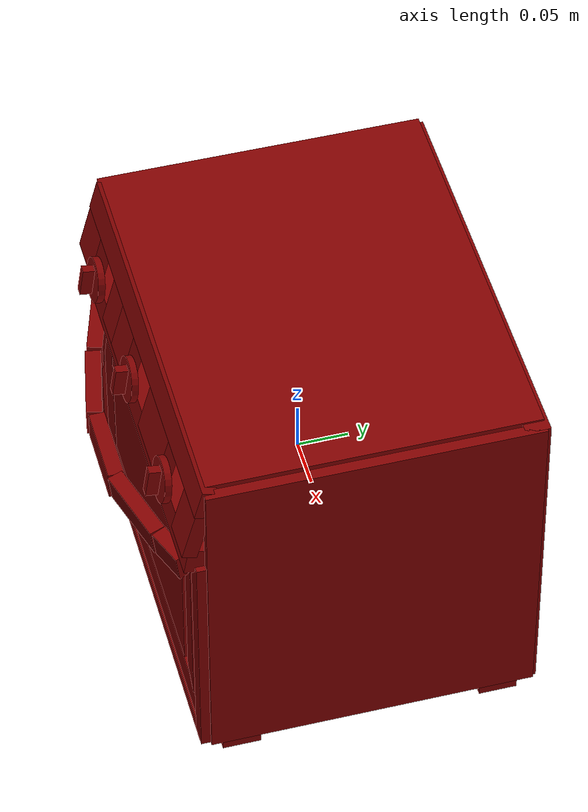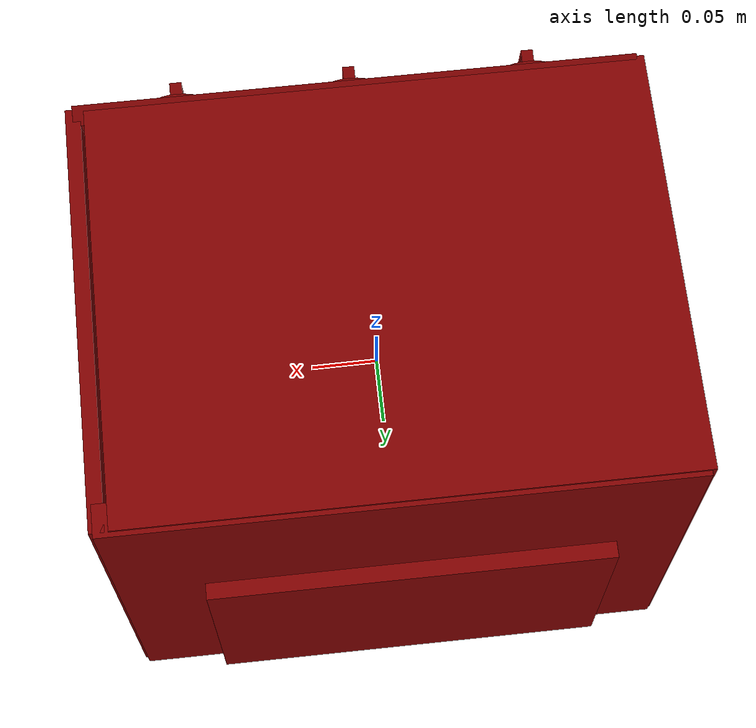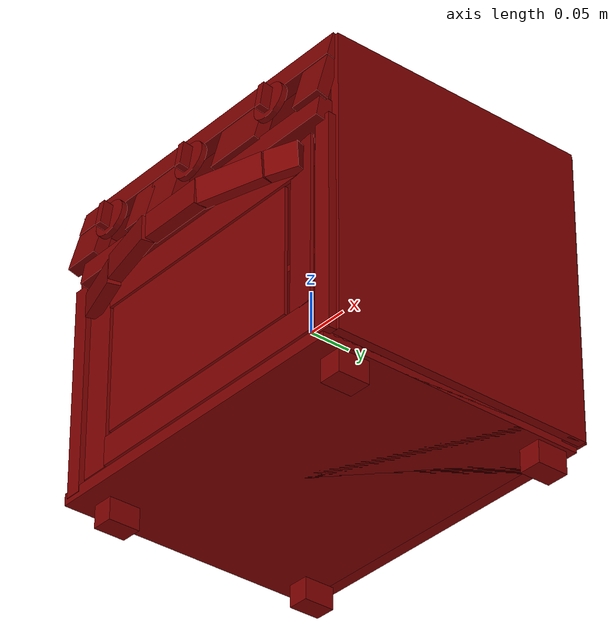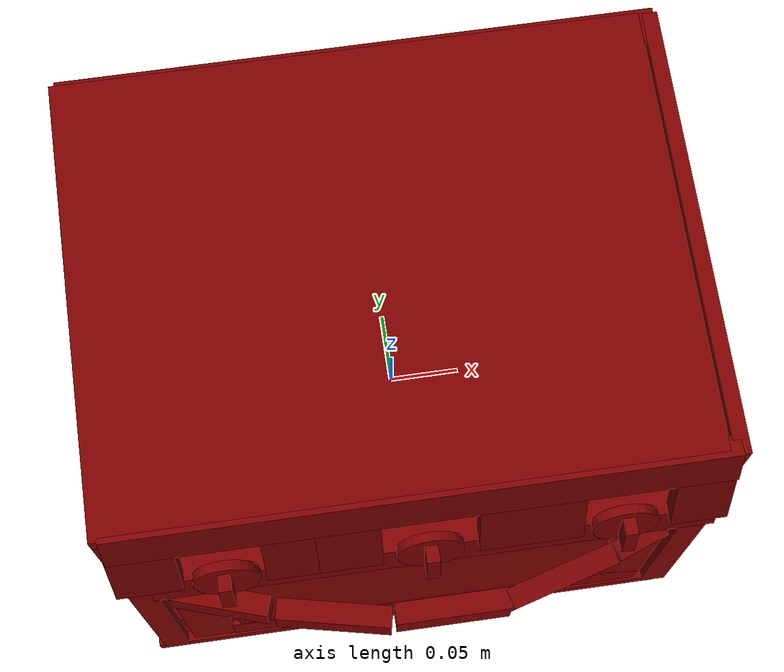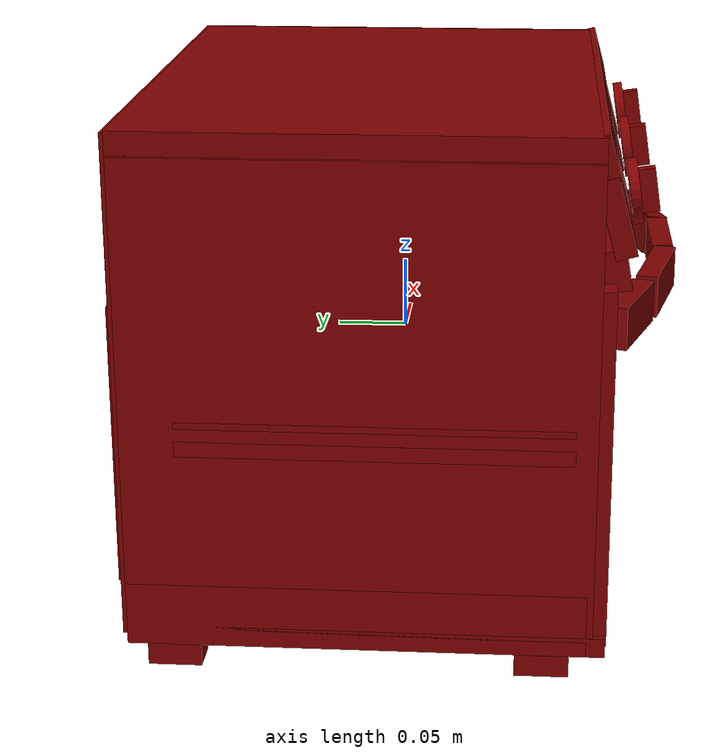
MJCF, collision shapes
<?xml version='1.0' encoding='UTF-8'?>
<mujoco model="model">
  <compiler angle="radian"/>
  <asset>
    <mesh file="visuals/Body001.obj" name="Body001_vis"/>
    <mesh file="visuals/Door001.obj" name="Door001_vis"/>
    <mesh file="visuals/Door001_Clear.obj" name="Door001_Clear_vis"/>
    <mesh file="visuals/Knob001.obj" name="Knob001_vis"/>
    <mesh file="visuals/Knob002.obj" name="Knob002_vis"/>
    <mesh file="visuals/Knob003.obj" name="Knob003_vis"/>
    <mesh file="visuals/Shelf001.obj" name="Shelf001_vis"/>
    <texture file="visuals/T_BC001.png" name="Body001_material" type="2d"/>
    <material name="Body001_material" rgba="1 1 1 1.0" texture="Body001_material" shininess="0.5" specular="1"/>
    <texture file="visuals/T_BC001.png" name="Door001_material" type="2d"/>
    <material name="Door001_material" rgba="1 1 1 1.0" texture="Door001_material" shininess="0.5" specular="0.3103448502657381"/>
    <texture file="visuals/T_BC001.png" name="Door001_Clear_material" type="2d"/>
    <material name="Door001_Clear_material" rgba="1 1 1 0.800000011920929" texture="Door001_Clear_material" shininess="0.5" specular="0.3103448502657381"/>
    <texture file="visuals/T_BC001.png" name="Knob001_material" type="2d"/>
    <material name="Knob001_material" rgba="1 1 1 1.0" texture="Knob001_material" shininess="0.5" specular="0.3103448502657381"/>
    <texture file="visuals/T_BC001.png" name="Knob002_material" type="2d"/>
    <material name="Knob002_material" rgba="1 1 1 1.0" texture="Knob002_material" shininess="0.5" specular="0.3103448502657381"/>
    <texture file="visuals/T_BC001.png" name="Knob003_material" type="2d"/>
    <material name="Knob003_material" rgba="1 1 1 1.0" texture="Knob003_material" shininess="0.5" specular="0.3103448502657381"/>
    <texture file="visuals/T_BC001.png" name="Shelf001_material" type="2d"/>
    <material name="Shelf001_material" rgba="1 1 1 1.0" texture="Shelf001_material" shininess="0.5" specular="2"/>
  </asset>
  <default>
    <default class="visual">
      <geom conaffinity="0" contype="0" group="1" type="mesh"/>
    </default>
    <default class="collision">
      <geom group="0" rgba="0.5 0 0 0.5"/>
    </default>
    <default class="spawn">
      <geom group="0" rgba="1 1 1 0.5" contype="0" conaffinity="0"/>
      <site group="0" rgba="1 1 1 0.5"/>
    </default>
    <default class="region">
      <geom group="1" conaffinity="0" contype="0" rgba="0 1 0 0"/>
    </default>
  </default>
  <worldbody>
    <body>
      <body name="object">
        <geom mesh="Body001_vis" type="mesh" solimp="0.998 0.998 0.001" solref="0.001 1" density="100" friction="0.95 0.3 0.1" class="visual" material="Body001_material"/>
        <geom class="collision" type="box" pos="-0.204528 0.018256 0.007521" size="0.004712510388344526 0.15850719809532166 0.16728898882865906" quat="1.0 0.0 0.0 0.0"/>
        <geom class="collision" type="box" pos="-0.006729 0.018256 0.183687" size="0.20254448056221008 0.15850836038589478 0.00806802324950695" quat="1.0 0.0 0.0 0.0"/>
        <geom class="collision" type="box" pos="0.203754 0.018256 0.015050" size="0.00536707416176796 0.15850719809532166 0.17481763660907745" quat="1.0 0.0 0.0 0.0"/>
        <geom class="collision" type="box" pos="-0.006729 0.020463 -0.143658" size="0.20254449546337128 0.15629984438419342 0.02221629023551941" quat="1.0 0.0 0.0 0.0"/>
        <geom class="collision" type="box" pos="-0.176886 -0.106317 -0.178498" size="0.012631108984351158 0.018723370507359505 0.013583316467702389" quat="1.0 0.0 0.0 0.0"/>
        <geom class="collision" type="box" pos="-0.176886 0.148423 -0.178498" size="0.012631108984351158 0.0187233779579401 0.013583316467702389" quat="1.0 0.0 0.0 0.0"/>
        <geom class="collision" type="box" pos="0.177592 0.148423 -0.178498" size="0.013422681018710136 0.0187233854085207 0.013583316467702389" quat="1.0 0.0 0.0 0.0"/>
        <geom class="collision" type="box" pos="0.177592 -0.106317 -0.178498" size="0.013422681018710136 0.018723390996456146 0.013583316467702389" quat="1.0 0.0 0.0 0.0"/>
        <geom class="collision" type="box" pos="0.000256 0.168363 0.015050" size="0.20618414878845215 0.011905954219400883 0.17481763660907745" quat="1.0 0.0 0.0 0.0"/>
        <geom class="collision" type="box" pos="-0.006318 0.187179 -0.043449" size="0.1494513601064682 0.0061151981353759766 0.10150176286697388" quat="1.0 0.0 0.0 0.0"/>
        <geom class="collision" type="box" pos="-0.000074 -0.138390 0.175931" size="0.007557372096925974 0.015530646778643131 0.20391935110092163" quat="0.5609855651855469 0.4304593503475189 0.5609855055809021 0.4304593503475189"/>
        <geom class="collision" type="box" pos="0.007881 -0.144443 0.097391" size="0.013209289871156216 0.01384431030601263 0.19167327880859375" quat="0.5416747331619263 0.45451948046684265 0.5416757464408875 0.45451948046684265"/>
        <geom class="collision" type="box" pos="-0.182478 -0.147509 0.138534" size="0.007237250916659832 0.026338152587413788 0.02228960208594799" quat="0.5609855651855469 0.43045932054519653 0.5609855055809021 0.43045932054519653"/>
        <geom class="collision" type="box" pos="-0.087943 -0.148266 0.135710" size="0.007237250450998545 0.02633814886212349 0.017509905621409416" quat="0.5609855651855469 0.43045932054519653 0.5609855055809021 0.43045932054519653"/>
        <geom class="collision" type="box" pos="-0.052551 -0.148266 0.135710" size="0.007237250450998545 0.02633814886212349 0.02466455288231373" quat="0.5609855651855469 0.43045932054519653 0.5609855055809021 0.43045932054519653"/>
        <geom class="collision" type="box" pos="0.071159 -0.148266 0.135710" size="0.007237250450998545 0.02633814886212349 0.03490207716822624" quat="0.5609855651855469 0.43045932054519653 0.5609855055809021 0.43045932054519653"/>
        <geom class="collision" type="box" pos="0.183909 -0.148266 0.135710" size="0.007237250450998545 0.02633814886212349 0.01940631866455078" quat="0.5609855651855469 0.43045932054519653 0.5609855055809021 0.43045932054519653"/>
        <geom class="collision" type="box" pos="-0.195005 -0.144758 -0.034611" size="0.009559612721204758 0.004741209093481302 0.1251569539308548" quat="1.0 0.0 0.0 0.0"/>
        <geom class="collision" type="box" pos="0.195238 -0.144758 -0.034611" size="0.010214176028966904 0.004741209093481302 0.1251569539308548" quat="1.0 0.0 0.0 0.0"/>
        <geom class="collision" type="box" pos="-0.006729 0.006982 -0.158919" size="0.20254449546337128 0.15558220446109772 0.006955395918339491" quat="1.0 0.0 0.0 0.0"/>
        <geom class="collision" type="box" pos="-0.190978 0.007136 -0.022355" size="0.018296319991350174 0.13272447884082794 0.005333381239324808" quat="1.0 0.0 0.0 0.0"/>
        <geom class="collision" type="box" pos="-0.190978 0.007136 -0.005667" size="0.018296319991350174 0.13272447884082794 0.00238844845443964" quat="1.0 0.0 0.0 0.0"/>
        <geom class="collision" type="box" pos="0.187844 0.007136 -0.022355" size="0.01615067943930626 0.13272447884082794 0.005333381239324808" quat="1.0 0.0 0.0 0.0"/>
        <geom class="collision" type="box" pos="0.187844 0.007136 -0.005667" size="0.01615067943930626 0.13272447884082794 0.00238844845443964" quat="1.0 0.0 0.0 0.0"/>
        <body name="Door001">
          <joint axis="1.0 0.0 0.0" pos="0.000121 -0.148784 -0.152802" limited="true" name="Door001_joint" range="0.0 1.5707963267948966" type="hinge" damping="1" frictionloss="1" armature=".01" stiffness="0.1" springref="-0.4"/>
          <geom mesh="Door001_vis" type="mesh" solimp="0.998 0.998 0.001" solref="0.001 1" density="100" friction="0.95 0.3 0.1" class="visual" material="Door001_material"/>
          <geom class="collision" type="box" pos="-0.162990 -0.145004 -0.034393" size="0.001958583015948534 0.016842423006892204 0.1144009679555893" quat="0.7071067094802856 0.0 0.0 0.7071068286895752"/>
          <geom class="collision" type="box" pos="0.015619 -0.145801 -0.130680" size="0.162174254655838 0.0019586135167628527 0.01684243604540825" quat="1.0 0.0 0.0 0.0"/>
          <geom class="collision" type="box" pos="0.161097 -0.145951 -0.017384" size="0.001970527693629265 0.017115995287895203 0.09739132970571518" quat="0.7372773289680481 0.0 0.0 0.6755902171134949"/>
          <geom class="collision" type="box" pos="0.015619 -0.145801 0.059721" size="0.162174254655838 0.00195861142128706 0.01684243604540825" quat="1.0 0.0 0.0 0.0"/>
          <geom class="collision" type="box" pos="0.015664 -0.188671 0.057365" size="0.03962233290076256 0.007571661379188299 0.014515959657728672" quat="1.0 0.0 0.0 0.0"/>
          <geom class="collision" type="box" pos="-0.065106 -0.182027 0.057365" size="0.007571658585220575 0.014515956863760948 0.03962232917547226" quat="0.5504435896873474 0.5504434108734131 0.4438602328300476 0.44386035203933716"/>
          <geom class="collision" type="box" pos="-0.140997 -0.160668 0.056504" size="0.007571658585220575 0.014515956863760948 0.03415042161941528" quat="0.5706027746200562 0.5706029534339905 0.4176271855831146 0.4176269769668579"/>
          <geom class="collision" type="box" pos="0.092688 -0.177151 0.057365" size="0.007571658119559288 0.014515955001115799 0.03962232917547226" quat="0.38632678985595703 0.463421106338501 0.5365034937858582 0.5900478959083557"/>
          <geom class="collision" type="box" pos="0.149516 -0.158580 0.057365" size="0.007335460279136896 0.014505648985505104 0.019109470769762993" quat="0.36022183299064636 0.4395780563354492 0.5562067627906799 0.6063377261161804"/>
          <body name="Door001_Clear">
            <geom mesh="Door001_Clear_vis" type="mesh" solimp="0.998 0.998 0.001" solref="0.001 1" density="100" friction="0.95 0.3 0.1" class="visual" material="Door001_Clear_material"/>
            <geom class="collision" type="box" pos="-0.001331 -0.145801 -0.035578" size="0.13857927918434143 0.0019586021080613136 0.07489508390426636" quat="1.0 0.0 0.0 0.0"/>
          </body>
        </body>
        <body name="Knob001">
          <joint axis="0.0 0.9894776344299316 -0.14468592405319214" pos="-0.130913 -0.172121 0.140745" limited="true" name="Knob001_joint" range="0.0 4.71238898038469" type="hinge" damping="0.05" armature="0.001"/>
          <geom mesh="Knob001_vis" type="mesh" solimp="0.998 0.998 0.001" solref="0.001 1" density="100" friction="0.95 0.3 0.1" class="visual" material="Knob001_material"/>
          <geom class="collision" type="cylinder" pos="-0.130184 -0.161634 0.138964" size="0.022034693509340286 0.003370579332113266" quat="0.75629061460495 0.65423583984375 0.0 0.0"/>
          <geom class="collision" type="box" pos="-0.131011 -0.170600 0.140381" size="0.004388734232634306 0.0059281326830387115 0.014759911224246025" quat="0.9973000288009644 -0.07343461364507675 1.630575646592093e-17 -3.536373150510003e-26"/>
        </body>
        <body name="Knob002">
          <joint axis="0.0 0.990027904510498 -0.14087256789207458" pos="0.002609 -0.163722 0.139551" limited="true" name="Knob002_joint" range="0.0 5.323254218582705" type="hinge" damping="0.05" armature="0.001"/>
          <geom mesh="Knob002_vis" type="mesh" solimp="0.998 0.998 0.001" solref="0.001 1" density="100" friction="0.95 0.3 0.1" class="visual" material="Knob002_material"/>
          <geom class="collision" type="cylinder" pos="0.002661 -0.161501 0.138945" size="0.022034693509340286 0.0032358141615986824" quat="0.75629061460495 0.65423583984375 0.0 0.0"/>
          <geom class="collision" type="box" pos="0.002540 -0.170600 0.140381" size="0.004388734232634306 0.0059281326830387115 0.014759911224246025" quat="0.9973000288009644 -0.07343461364507675 1.630575646592093e-17 -3.536373150510003e-26"/>
        </body>
        <body name="Knob003">
          <joint axis="0.0 0.98921138048172 -0.14649511873722076" pos="0.130867 -0.172121 0.140745" limited="true" name="Knob003_joint" range="0.0 4.71238898038469" type="hinge" damping="0.05" armature="0.001"/>
          <geom mesh="Knob003_vis" type="mesh" solimp="0.998 0.998 0.001" solref="0.001 1" density="100" friction="0.95 0.3 0.1" class="visual" material="Knob003_material"/>
          <geom class="collision" type="cylinder" pos="0.130499 -0.161580 0.138957" size="0.022034693509340286 0.0033161682076752186" quat="0.75629061460495 0.65423583984375 0.0 0.0"/>
          <geom class="collision" type="box" pos="0.130951 -0.170600 0.140381" size="0.004388734232634306 0.0059281326830387115 0.014759911224246025" quat="0.9973000288009644 -0.07343461364507675 1.630575646592093e-17 -3.536373150510003e-26"/>
        </body>
        <body name="Shelf001">
          <joint axis="0.0 -1.0 0.0" pos="-0.000579 0.016792 -0.012377" limited="true" name="Shelf001_joint" range="0.0 0.15" type="slide" damping="1" frictionloss="1" armature=".01" stiffness="0.05"/>
          <geom mesh="Shelf001_vis" type="mesh" solimp="0.998 0.998 0.001" solref="0.001 1" density="100" friction="0.95 0.3 0.1" class="visual" material="Shelf001_material"/>
          <geom class="collision" type="box" pos="-0.000030 0.016390 -0.012023" size="0.17391815781593323 0.11881919950246811 0.003745504654943943" quat="1.0 -8.146034247147327e-08 0.0 0.0"/>
        </body>
        <geom class="region" name="reg_main" type="box" pos="0.0 0.022654499999999994 -5.000000000005e-07" size="0.211257 0.1728855 0.19371549999999998"/>
        <geom class="region" name="reg_int" type="box" pos="-0.00013449999999999573 0.011685500000000001 0.030295000000000002" size="0.19941350000000002 0.14580349999999997 0.151156"/>
      </body>
    </body>
  </worldbody>
  <actuator>
    <motor name="Door001_joint_actuator" joint="Door001_joint" gear="50"/>
    <motor name="Knob001_joint_actuator" joint="Knob001_joint" gear="50"/>
    <motor name="Knob002_joint_actuator" joint="Knob002_joint" gear="50"/>
    <motor name="Knob003_joint_actuator" joint="Knob003_joint" gear="50"/>
    <motor name="Shelf001_joint_actuator" joint="Shelf001_joint" gear="50"/>
  </actuator>
</mujoco>
